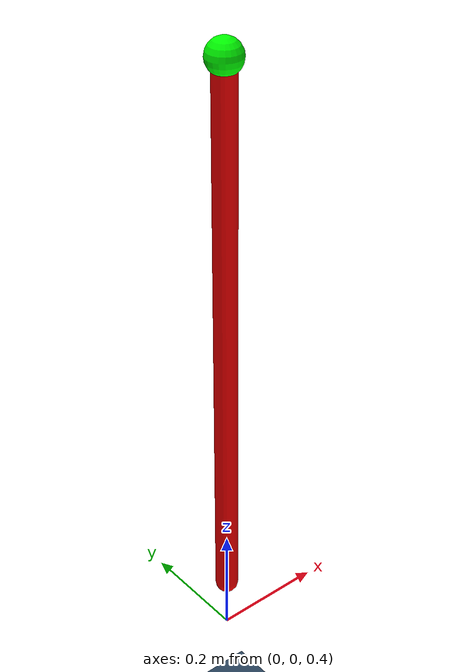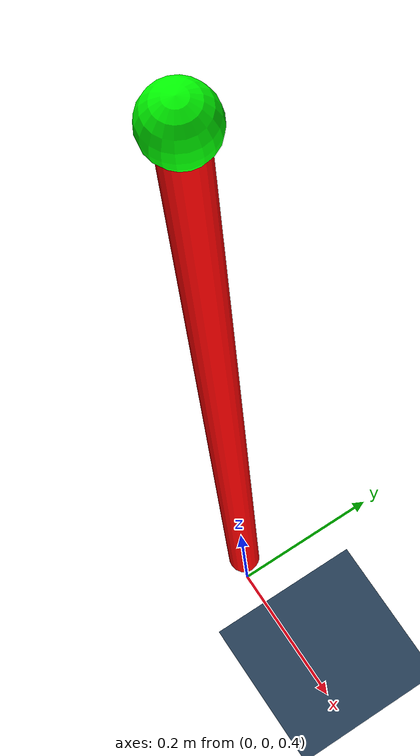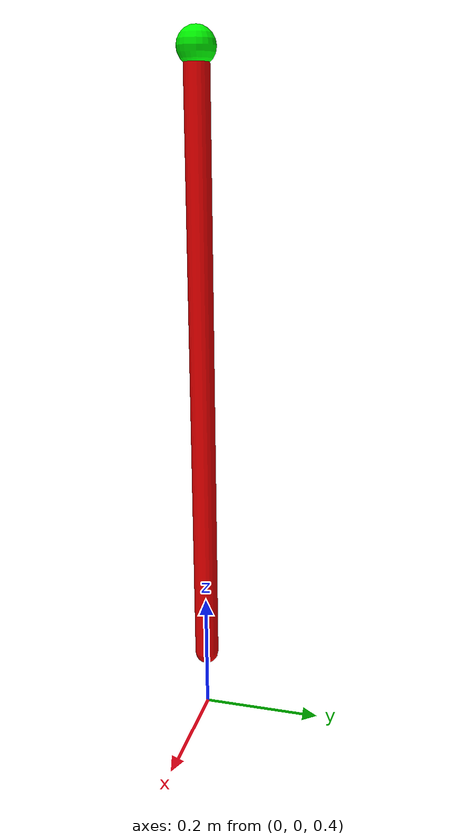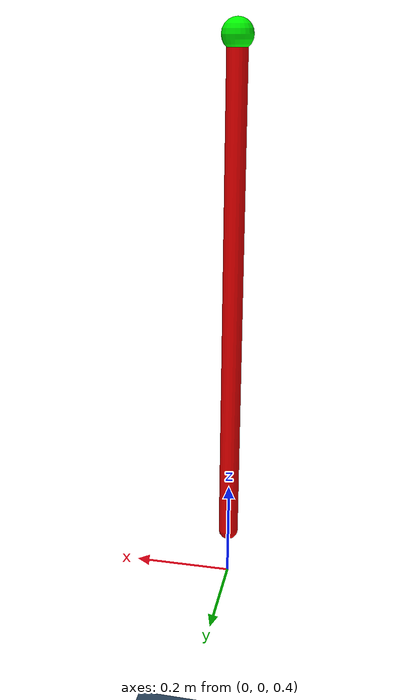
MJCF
<mujoco model="pendulum_scene">
  <!-- Model that includes the pendulum along with scene details like lighting and a ground. -->
  <include file="pendulum.xml"/>

  <statistic center="0 0 0.55" extent="1.1"/>

  <visual>
    <headlight diffuse="0.6 0.6 0.6" ambient="0.3 0.3 0.3" specular="0 0 0"/>
    <rgba haze="0.15 0.25 0.35 1"/>
    <global azimuth="150" elevation="-20" offwidth="1920" offheight="1080"/>
  </visual>

  <asset>
    <texture type="skybox" builtin="gradient" rgb1="0.3 0.5 0.7" rgb2="0 0 0" width="512" height="3072"/>
    <texture type="2d" name="groundplane" builtin="checker" mark="edge" rgb1="0.2 0.3 0.4" rgb2="0.1 0.2 0.3"
      markrgb="0.8 0.8 0.8" width="300" height="300"/>
    <material name="groundplane" texture="groundplane" texuniform="true" texrepeat="5 5" reflectance="0.2"/>
  </asset>

  <worldbody>
    <camera name="camera" pos="0.0 3.0 1.5" xyaxes="-1.0 0.0 0.0 0.0 0.0 1.0" mode="fixed"/>
    <light pos="0 0 3" dir="0 0 -1" directional="false"/>
    <geom name="floor" size="0 0 .125" type="plane" material="groundplane"/>
  </worldbody>

</mujoco>

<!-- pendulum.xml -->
<mujoco model="pendulum">
  <!-- added manually -->
  <option timestep="0.02" iterations="1" ls_iterations="4">
    <flag contact="disable" eulerdamp="disable"/>
  </option>

  <worldbody>
    <body name="base" pos="0 0 1.5">
      <inertial pos="0 0 0" mass="2" diaginertia="0.00072 0.00072 0.00072"/>
      <geom name="base_visual" size="0.03" pos="0 0 0" type="sphere"
            contype="0" conaffinity="0" group="1" density="0" rgba="0 1 0 1"/>
      <body name="pendulum_link" pos="0 0 0">
        <inertial pos="0 0 -0.5" mass="1" diaginertia="0.087959 0.087959 0.00019896"/>
        <joint name="pendulum_joint" pos="0 0 0" axis="0 1 0" />
        <geom name="pendulum_link_visual" size="0.02 0.5" pos="0 0 -0.5"
              type="capsule" contype="0" conaffinity="0" group="1" density="0"
              rgba="1 0 0 1"/>
        <site name="tip" pos="0 0 -1"/>
      </body>
    </body>
  </worldbody>

  <actuator>
    <motor gear="2" name="pendulum_joint_actuator" ctrllimited="true" ctrlrange="-1.0 1.0" joint="pendulum_joint"/>
  </actuator>
  <equality/>
</mujoco>
